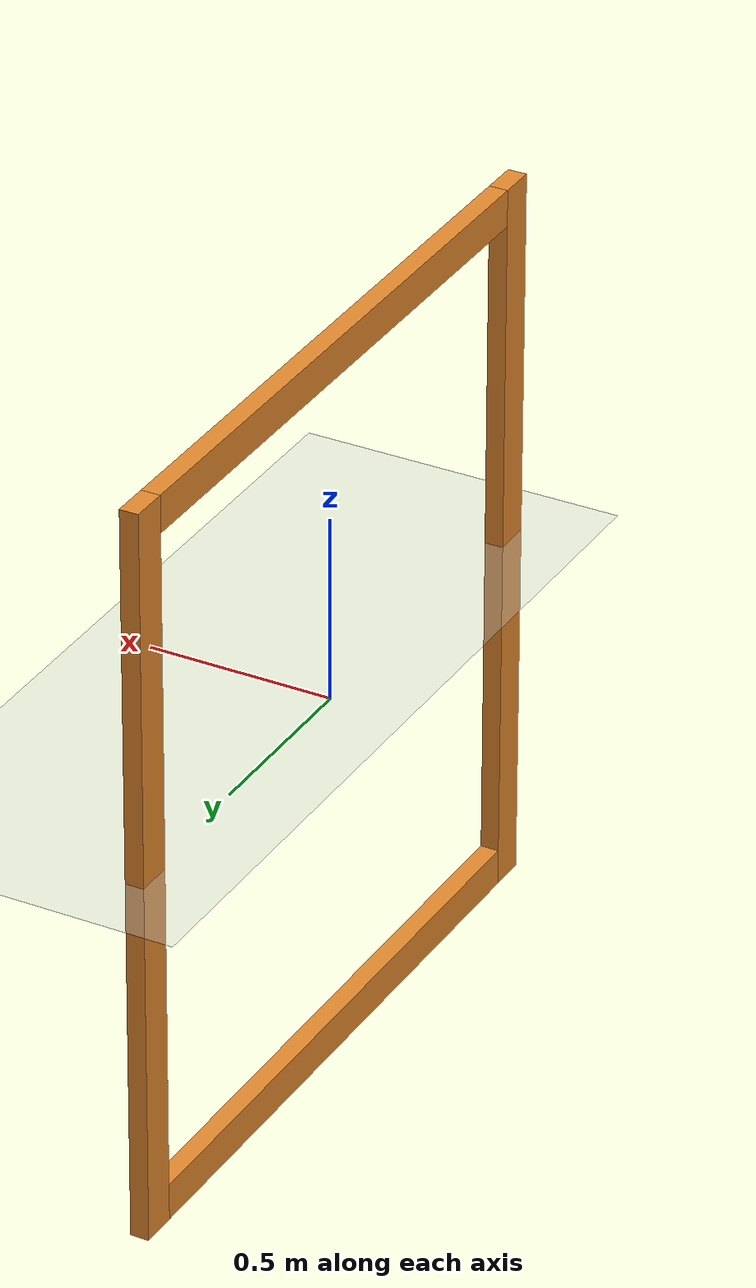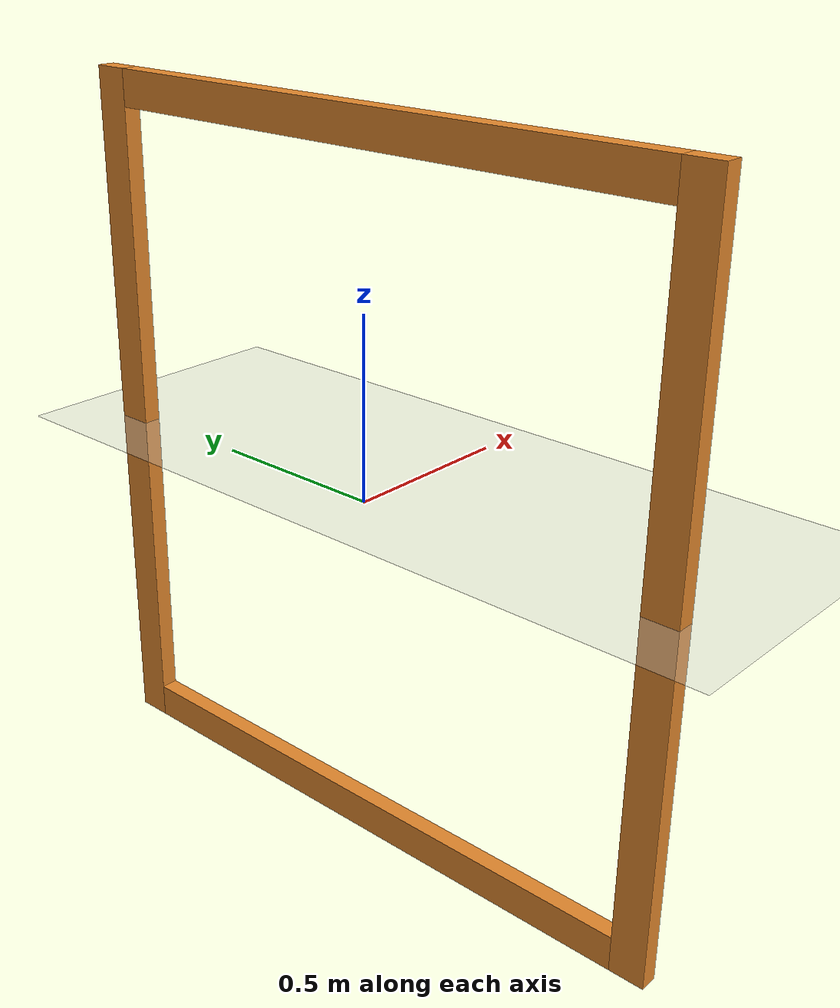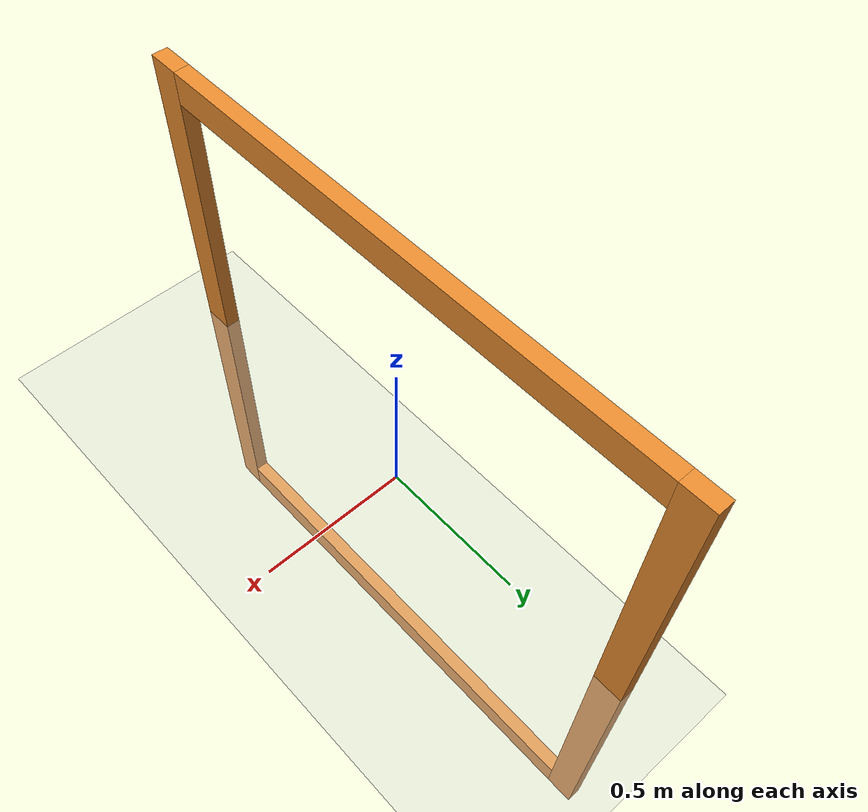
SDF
<sdf version="1.4">
 <world name="smart_drone_simple_world">
  <include><uri>model://ground_plane</uri></include>
  <include><uri>model://sun</uri></include>
  <model name="smart_drone_orange_gate9">
   <link name="left">
    <pose>0 -0.9 0 0 -0 0</pose>
    <inertial>
     <mass>1</mass>
     <inertia>
      <ixx>0.166667</ixx>
      <ixy>0</ixy>
      <ixz>0</ixz>
      <iyy>0.166667</iyy>
      <iyz>0</iyz>
      <izz>0.166667</izz>
     </inertia>
     <pose>0 -0.9 0 0 -0 0</pose>
    </inertial>
    <visual name="visual">
     <geometry><box><size>0.05 0.1 2</size></box></geometry>
     <material>
      <lighting>1</lighting>
      <script><uri>file://media/materials/scripts/gazebo.material</uri><name>Gazebo/Grey</name></script>
      <shader type="pixel"><normal_map>__default__</normal_map></shader>
      <ambient>0.9 0.54 0.18 1</ambient>
      <diffuse>0.9 0.54 0.18 1</diffuse>
      <specular>0.9 0.54 0.18 1</specular>
      <emissive>0 0 0 1</emissive>
     </material>
    </visual>
    <collision name="collision">
     <geometry><box><size>0.05 0.1 2</size></box></geometry>
     <surface>
      <friction>
       <ode><mu>1</mu><mu2>1</mu2><fdir1>0 0 0</fdir1><slip1>0</slip1><slip2>0</slip2></ode>
       <torsional>
        <coefficient>1</coefficient>
        <patch_radius>0</patch_radius>
        <surface_radius>0</surface_radius>
        <use_patch_radius>1</use_patch_radius>
        <ode><slip>0</slip></ode>
       </torsional>
      </friction>
      <bounce><restitution_coefficient>0</restitution_coefficient><threshold>1e+06</threshold></bounce>
      <contact>
       <collide_without_contact>0</collide_without_contact>
       <collide_without_contact_bitmask>1</collide_without_contact_bitmask>
       <collide_bitmask>1</collide_bitmask>
       <ode>
        <soft_cfm>0</soft_cfm>
        <soft_erp>0.2</soft_erp>
        <kp>1e+13</kp>
        <kd>1</kd>
        <max_vel>0.01</max_vel>
        <min_depth>0</min_depth>
       </ode>
       <bullet>
        <split_impulse>1</split_impulse>
        <split_impulse_penetration_threshold>-0.01</split_impulse_penetration_threshold>
        <soft_cfm>0</soft_cfm>
        <soft_erp>0.2</soft_erp>
        <kp>1e+13</kp>
        <kd>1</kd>
       </bullet>
      </contact>
     </surface>
    </collision>
   </link>
   <link name="top">
    <pose>0 0 0.95 0 -0 0</pose>
    <inertial>
     <mass>1</mass>
     <inertia>
      <ixx>0.166667</ixx>
      <ixy>0</ixy>
      <ixz>0</ixz>
      <iyy>0.166667</iyy>
      <iyz>0</iyz>
      <izz>0.166667</izz>
     </inertia>
     <pose>0 0 0.95 0 -0 0</pose>
    </inertial>
    <visual name="visual">
     <geometry><box><size>0.05 1.7 0.1</size></box></geometry>
     <material>
      <lighting>1</lighting>
      <script><uri>file://media/materials/scripts/gazebo.material</uri><name>Gazebo/Grey</name></script>
      <shader type="pixel"><normal_map>__default__</normal_map></shader>
      <ambient>0.9 0.54 0.18 1</ambient>
      <diffuse>0.9 0.54 0.18 1</diffuse>
      <specular>0.9 0.54 0.18 1</specular>
      <emissive>0 0 0 1</emissive>
     </material>
    </visual>
    <collision name="collision">
     <geometry><box><size>0.05 1.7 0.1</size></box></geometry>
     <surface>
      <friction>
       <ode><mu>1</mu><mu2>1</mu2><fdir1>0 0 0</fdir1><slip1>0</slip1><slip2>0</slip2></ode>
       <torsional>
        <coefficient>1</coefficient>
        <patch_radius>0</patch_radius>
        <surface_radius>0</surface_radius>
        <use_patch_radius>1</use_patch_radius>
        <ode><slip>0</slip></ode>
       </torsional>
      </friction>
      <bounce><restitution_coefficient>0</restitution_coefficient><threshold>1e+06</threshold></bounce>
      <contact>
       <collide_without_contact>0</collide_without_contact>
       <collide_without_contact_bitmask>1</collide_without_contact_bitmask>
       <collide_bitmask>1</collide_bitmask>
       <ode>
        <soft_cfm>0</soft_cfm>
        <soft_erp>0.2</soft_erp>
        <kp>1e+13</kp>
        <kd>1</kd>
        <max_vel>0.01</max_vel>
        <min_depth>0</min_depth>
       </ode>
       <bullet>
        <split_impulse>1</split_impulse>
        <split_impulse_penetration_threshold>-0.01</split_impulse_penetration_threshold>
        <soft_cfm>0</soft_cfm>
        <soft_erp>0.2</soft_erp>
        <kp>1e+13</kp>
        <kd>1</kd>
       </bullet>
      </contact>
     </surface>
    </collision>
   </link>
   <link name="bot">
    <pose>0 0 -0.95 0 -0 0</pose>
    <inertial>
     <mass>1</mass>
     <inertia>
      <ixx>0.166667</ixx>
      <ixy>0</ixy>
      <ixz>0</ixz>
      <iyy>0.166667</iyy>
      <iyz>0</iyz>
      <izz>0.166667</izz>
     </inertia>
     <pose>0 0 -0.95 0 -0 0</pose>
    </inertial>
    <visual name="visual">
     <geometry><box><size>0.05 1.7 0.1</size></box></geometry>
     <material>
      <lighting>1</lighting>
      <script><uri>file://media/materials/scripts/gazebo.material</uri><name>Gazebo/Grey</name></script>
      <shader type="pixel"><normal_map>__default__</normal_map></shader>
      <ambient>0.9 0.54 0.18 1</ambient>
      <diffuse>0.9 0.54 0.18 1</diffuse>
      <specular>0.9 0.54 0.18 1</specular>
      <emissive>0 0 0 1</emissive>
     </material>
    </visual>
    <collision name="collision">
     <geometry><box><size>0.05 1.7 0.1</size></box></geometry>
     <surface>
      <friction>
       <ode><mu>1</mu><mu2>1</mu2><fdir1>0 0 0</fdir1><slip1>0</slip1><slip2>0</slip2></ode>
       <torsional>
        <coefficient>1</coefficient>
        <patch_radius>0</patch_radius>
        <surface_radius>0</surface_radius>
        <use_patch_radius>1</use_patch_radius>
        <ode><slip>0</slip></ode>
       </torsional>
      </friction>
      <bounce><restitution_coefficient>0</restitution_coefficient><threshold>1e+06</threshold></bounce>
      <contact>
       <collide_without_contact>0</collide_without_contact>
       <collide_without_contact_bitmask>1</collide_without_contact_bitmask>
       <collide_bitmask>1</collide_bitmask>
       <ode>
        <soft_cfm>0</soft_cfm>
        <soft_erp>0.2</soft_erp>
        <kp>1e+13</kp>
        <kd>1</kd>
        <max_vel>0.01</max_vel>
        <min_depth>0</min_depth>
       </ode>
       <bullet>
        <split_impulse>1</split_impulse>
        <split_impulse_penetration_threshold>-0.01</split_impulse_penetration_threshold>
        <soft_cfm>0</soft_cfm>
        <soft_erp>0.2</soft_erp>
        <kp>1e+13</kp>
        <kd>1</kd>
       </bullet>
      </contact>
     </surface>
    </collision>
   </link>
   <link name="right">
    <pose>0 0.9 0 0 -0 0</pose>
    <inertial>
     <mass>1</mass>
     <inertia>
      <ixx>0.166667</ixx>
      <ixy>0</ixy>
      <ixz>0</ixz>
      <iyy>0.166667</iyy>
      <iyz>0</iyz>
      <izz>0.166667</izz>
     </inertia>
     <pose>0 0.9 0 0 -0 0</pose>
    </inertial>
    <visual name="visual">
     <geometry><box><size>0.05 0.1 2</size></box></geometry>
     <material>
      <lighting>1</lighting>
      <script><uri>file://media/materials/scripts/gazebo.material</uri><name>Gazebo/Grey</name></script>
      <shader type="pixel"><normal_map>__default__</normal_map></shader>
      <ambient>0.9 0.54 0.18 1</ambient>
      <diffuse>0.9 0.54 0.18 1</diffuse>
      <specular>0.9 0.54 0.18 1</specular>
      <emissive>0 0 0 1</emissive>
     </material>
    </visual>
    <collision name="collision">
     <geometry><box><size>0.05 0.1 2</size></box></geometry>
     <surface>
      <friction>
       <ode><mu>1</mu><mu2>1</mu2><fdir1>0 0 0</fdir1><slip1>0</slip1><slip2>0</slip2></ode>
       <torsional>
        <coefficient>1</coefficient>
        <patch_radius>0</patch_radius>
        <surface_radius>0</surface_radius>
        <use_patch_radius>1</use_patch_radius>
        <ode><slip>0</slip></ode>
       </torsional>
      </friction>
      <bounce><restitution_coefficient>0</restitution_coefficient><threshold>1e+06</threshold></bounce>
      <contact>
       <collide_without_contact>0</collide_without_contact>
       <collide_without_contact_bitmask>1</collide_without_contact_bitmask>
       <collide_bitmask>1</collide_bitmask>
       <ode>
        <soft_cfm>0</soft_cfm>
        <soft_erp>0.2</soft_erp>
        <kp>1e+13</kp>
        <kd>1</kd>
        <max_vel>0.01</max_vel>
        <min_depth>0</min_depth>
       </ode>
       <bullet>
        <split_impulse>1</split_impulse>
        <split_impulse_penetration_threshold>-0.01</split_impulse_penetration_threshold>
        <soft_cfm>0</soft_cfm>
        <soft_erp>0.2</soft_erp>
        <kp>1e+13</kp>
        <kd>1</kd>
       </bullet>
      </contact>
     </surface>
    </collision>
   </link>
   <static>1</static>
  </model>
 </world>
</sdf>
